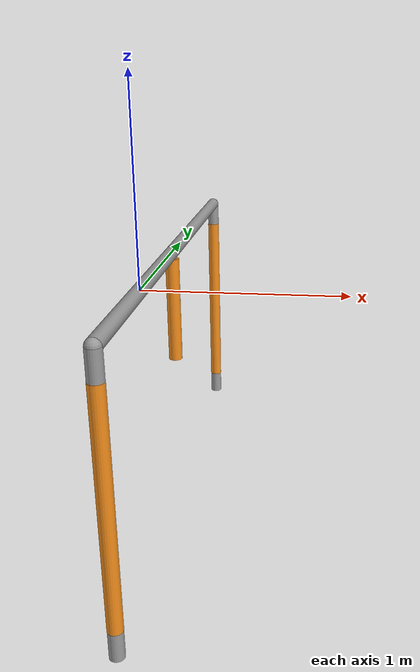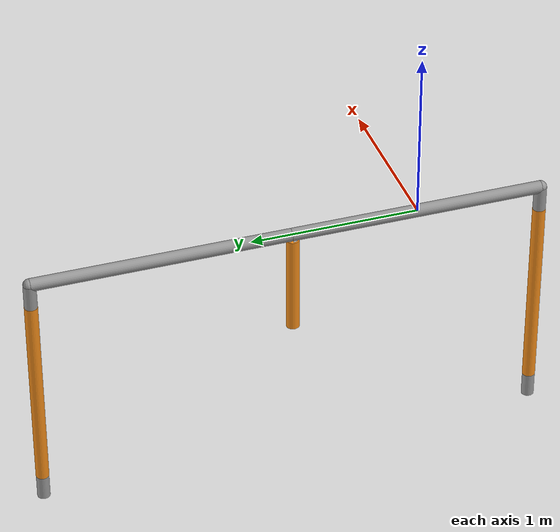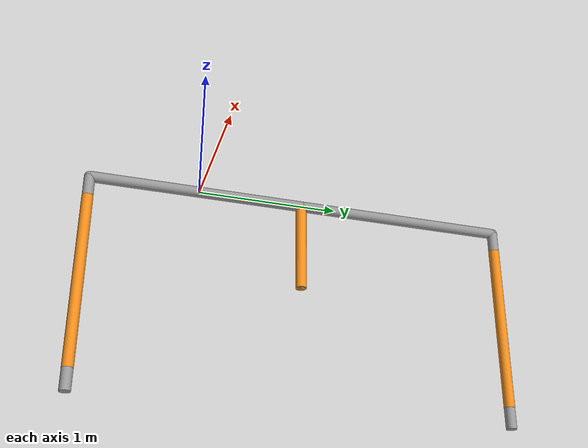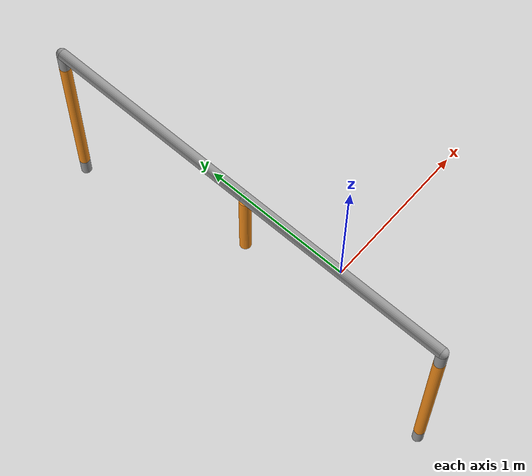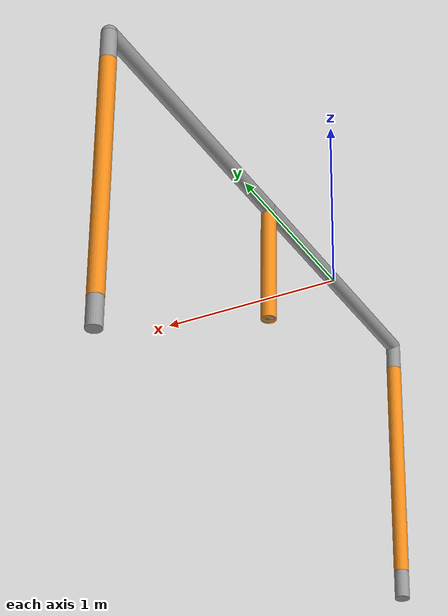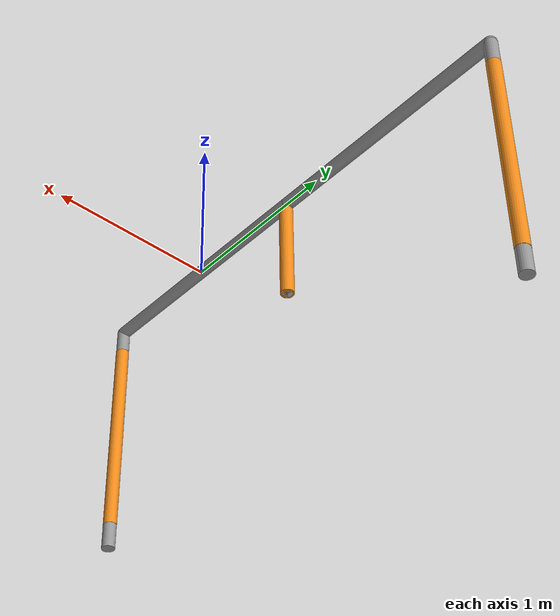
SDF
<?xml version='1.0'?>
<sdf version='1.6'>
  <model name='gate'>
    <link name='component_rt'>
      <inertial>
        <mass>10</mass>
        <inertia>
          <ixx>0.145833</ixx>
          <ixy>0</ixy>
          <ixz>0</ixz>
          <iyy>0.145833</iyy>
          <iyz>0</iyz>
          <izz>0.125</izz>
        </inertia>
        <pose>0 0 0 0 -0 0</pose>
      </inertial>
      <pose>0 1.52 -0.000146 1.5707 -0 0</pose>
      <self_collide>0</self_collide>
      <enable_wind>0</enable_wind>
      <kinematic>0</kinematic>
      <gravity>0</gravity>
      <visual name='visual'>
        <pose>0 0 0 0 -0 0</pose>
        <geometry>
          <cylinder>
            <radius>0.0381</radius>
            <length>1.52</length>
          </cylinder>
        </geometry>
        <material>
          <lighting>1</lighting>
          <script>
            <uri>file://media/materials/scripts/gazebo.material</uri>
            <name>Gazebo/Grey</name>
          </script>
          <shader type='pixel'/>
          <emissive>0 0 0 1</emissive>
        </material>
        <transparency>0</transparency>
        <cast_shadows>1</cast_shadows>
      </visual>
      <collision name='collision'>
        <laser_retro>0</laser_retro>
        <max_contacts>10</max_contacts>
        <pose>0 0 0 0 -0 0</pose>
        <geometry>
          <cylinder>
            <radius>0.0381</radius>
            <length>1.52</length>
          </cylinder>
        </geometry>
        <surface>
          <friction>
            <ode>
              <mu>1</mu>
              <mu2>1</mu2>
              <fdir1>0 0 0</fdir1>
              <slip1>0</slip1>
              <slip2>0</slip2>
            </ode>
            <torsional>
              <coefficient>1</coefficient>
              <patch_radius>0</patch_radius>
              <surface_radius>0</surface_radius>
              <use_patch_radius>1</use_patch_radius>
              <ode>
                <slip>0</slip>
              </ode>
            </torsional>
          </friction>
          <bounce>
            <restitution_coefficient>0</restitution_coefficient>
            <threshold>1e+06</threshold>
          </bounce>
          <contact>
            <collide_without_contact>0</collide_without_contact>
            <collide_without_contact_bitmask>1</collide_without_contact_bitmask>
            <collide_bitmask>1</collide_bitmask>
            <ode>
              <soft_cfm>0</soft_cfm>
              <soft_erp>0.2</soft_erp>
              <kp>1e+13</kp>
              <kd>1</kd>
              <max_vel>0.01</max_vel>
              <min_depth>0</min_depth>
            </ode>
            <bullet>
              <split_impulse>1</split_impulse>
              <split_impulse_penetration_threshold>-0.01</split_impulse_penetration_threshold>
              <soft_cfm>0</soft_cfm>
              <soft_erp>0.2</soft_erp>
              <kp>1e+13</kp>
              <kd>1</kd>
            </bullet>
          </contact>
        </surface>
      </collision>
    </link>
    <link name='component_lb'>
      <inertial>
        <mass>10</mass>
        <inertia>
          <ixx>0.145833</ixx>
          <ixy>0</ixy>
          <ixz>0</ixz>
          <iyy>0.145833</iyy>
          <iyz>0</iyz>
          <izz>0.125</izz>
        </inertia>
        <pose>0 0 0 0 -0 0</pose>
      </inertial>
      <pose>-0 -0.760073 -0.759927 0 -0 0</pose>
      <self_collide>0</self_collide>
      <enable_wind>0</enable_wind>
      <kinematic>0</kinematic>
      <gravity>0</gravity>
      <visual name='visual'>
        <pose>0 0 0 0 -0 0</pose>
        <geometry>
          <cylinder>
            <radius>0.0381</radius>
            <length>1.52</length>
          </cylinder>
        </geometry>
        <material>
          <lighting>1</lighting>
          <script>
            <uri>file://media/materials/scripts/gazebo.material</uri>
            <name>Gazebo/Grey</name>
          </script>
          <shader type='pixel'/>
          <emissive>0 0 0 1</emissive>
        </material>
        <transparency>0</transparency>
        <cast_shadows>1</cast_shadows>
      </visual>
      <collision name='collision'>
        <laser_retro>0</laser_retro>
        <max_contacts>10</max_contacts>
        <pose>0 0 0 0 -0 0</pose>
        <geometry>
          <cylinder>
            <radius>0.0381</radius>
            <length>1.52</length>
          </cylinder>
        </geometry>
        <surface>
          <friction>
            <ode>
              <mu>1</mu>
              <mu2>1</mu2>
              <fdir1>0 0 0</fdir1>
              <slip1>0</slip1>
              <slip2>0</slip2>
            </ode>
            <torsional>
              <coefficient>1</coefficient>
              <patch_radius>0</patch_radius>
              <surface_radius>0</surface_radius>
              <use_patch_radius>1</use_patch_radius>
              <ode>
                <slip>0</slip>
              </ode>
            </torsional>
          </friction>
          <bounce>
            <restitution_coefficient>0</restitution_coefficient>
            <threshold>1e+06</threshold>
          </bounce>
          <contact>
            <collide_without_contact>0</collide_without_contact>
            <collide_without_contact_bitmask>1</collide_without_contact_bitmask>
            <collide_bitmask>1</collide_bitmask>
            <ode>
              <soft_cfm>0</soft_cfm>
              <soft_erp>0.2</soft_erp>
              <kp>1e+13</kp>
              <kd>1</kd>
              <max_vel>0.01</max_vel>
              <min_depth>0</min_depth>
            </ode>
            <bullet>
              <split_impulse>1</split_impulse>
              <split_impulse_penetration_threshold>-0.01</split_impulse_penetration_threshold>
              <soft_cfm>0</soft_cfm>
              <soft_erp>0.2</soft_erp>
              <kp>1e+13</kp>
              <kd>1</kd>
            </bullet>
          </contact>
        </surface>
      </collision>
    </link>
    <link name='component_lt'>
      <inertial>
        <mass>10</mass>
        <inertia>
          <ixx>0.145833</ixx>
          <ixy>0</ixy>
          <ixz>0</ixz>
          <iyy>0.145833</iyy>
          <iyz>0</iyz>
          <izz>0.125</izz>
        </inertia>
        <pose>0 0 0 0 -0 0</pose>
      </inertial>
      <pose>0 0 0 1.5707 -0 0</pose>
      <self_collide>0</self_collide>
      <enable_wind>0</enable_wind>
      <kinematic>0</kinematic>
      <gravity>0</gravity>
      <visual name='visual'>
        <pose>0 0 0 0 -0 0</pose>
        <geometry>
          <cylinder>
            <radius>0.0381</radius>
            <length>1.52</length>
          </cylinder>
        </geometry>
        <material>
          <lighting>1</lighting>
          <script>
            <uri>file://media/materials/scripts/gazebo.material</uri>
            <name>Gazebo/Grey</name>
          </script>
          <shader type='pixel'/>
          <emissive>0 0 0 1</emissive>
        </material>
        <transparency>0</transparency>
        <cast_shadows>1</cast_shadows>
      </visual>
      <collision name='collision'>
        <laser_retro>0</laser_retro>
        <max_contacts>10</max_contacts>
        <pose>0 0 0 0 -0 0</pose>
        <geometry>
          <cylinder>
            <radius>0.0381</radius>
            <length>1.52</length>
          </cylinder>
        </geometry>
        <surface>
          <friction>
            <ode>
              <mu>1</mu>
              <mu2>1</mu2>
              <fdir1>0 0 0</fdir1>
              <slip1>0</slip1>
              <slip2>0</slip2>
            </ode>
            <torsional>
              <coefficient>1</coefficient>
              <patch_radius>0</patch_radius>
              <surface_radius>0</surface_radius>
              <use_patch_radius>1</use_patch_radius>
              <ode>
                <slip>0</slip>
              </ode>
            </torsional>
          </friction>
          <bounce>
            <restitution_coefficient>0</restitution_coefficient>
            <threshold>1e+06</threshold>
          </bounce>
          <contact>
            <collide_without_contact>0</collide_without_contact>
            <collide_without_contact_bitmask>1</collide_without_contact_bitmask>
            <collide_bitmask>1</collide_bitmask>
            <ode>
              <soft_cfm>0</soft_cfm>
              <soft_erp>0.2</soft_erp>
              <kp>1e+13</kp>
              <kd>1</kd>
              <max_vel>0.01</max_vel>
              <min_depth>0</min_depth>
            </ode>
            <bullet>
              <split_impulse>1</split_impulse>
              <split_impulse_penetration_threshold>-0.01</split_impulse_penetration_threshold>
              <soft_cfm>0</soft_cfm>
              <soft_erp>0.2</soft_erp>
              <kp>1e+13</kp>
              <kd>1</kd>
            </bullet>
          </contact>
        </surface>
      </collision>
    </link>
    <link name='component_rb'>
      <inertial>
        <mass>10</mass>
        <inertia>
          <ixx>0.145833</ixx>
          <ixy>0</ixy>
          <ixz>0</ixz>
          <iyy>0.145833</iyy>
          <iyz>0</iyz>
          <izz>0.125</izz>
        </inertia>
        <pose>0 0 0 0 -0 0</pose>
      </inertial>
      <pose>0 2.27993 -0.76022 0 -0 0</pose>
      <self_collide>0</self_collide>
      <enable_wind>0</enable_wind>
      <kinematic>0</kinematic>
      <gravity>0</gravity>
      <visual name='visual'>
        <pose>0 0 0 0 -0 0</pose>
        <geometry>
          <cylinder>
            <radius>0.0381</radius>
            <length>1.52</length>
          </cylinder>
        </geometry>
        <material>
          <lighting>1</lighting>
          <script>
            <uri>file://media/materials/scripts/gazebo.material</uri>
            <name>Gazebo/Grey</name>
          </script>
          <shader type='pixel'/>
          <emissive>0 0 0 1</emissive>
        </material>
        <transparency>0</transparency>
        <cast_shadows>1</cast_shadows>
      </visual>
      <collision name='collision'>
        <laser_retro>0</laser_retro>
        <max_contacts>10</max_contacts>
        <pose>0 0 0 0 -0 0</pose>
        <geometry>
          <cylinder>
            <radius>0.0381</radius>
            <length>1.52</length>
          </cylinder>
        </geometry>
        <surface>
          <friction>
            <ode>
              <mu>1</mu>
              <mu2>1</mu2>
              <fdir1>0 0 0</fdir1>
              <slip1>0</slip1>
              <slip2>0</slip2>
            </ode>
            <torsional>
              <coefficient>1</coefficient>
              <patch_radius>0</patch_radius>
              <surface_radius>0</surface_radius>
              <use_patch_radius>1</use_patch_radius>
              <ode>
                <slip>0</slip>
              </ode>
            </torsional>
          </friction>
          <bounce>
            <restitution_coefficient>0</restitution_coefficient>
            <threshold>1e+06</threshold>
          </bounce>
          <contact>
            <collide_without_contact>0</collide_without_contact>
            <collide_without_contact_bitmask>1</collide_without_contact_bitmask>
            <collide_bitmask>1</collide_bitmask>
            <ode>
              <soft_cfm>0</soft_cfm>
              <soft_erp>0.2</soft_erp>
              <kp>1e+13</kp>
              <kd>1</kd>
              <max_vel>0.01</max_vel>
              <min_depth>0</min_depth>
            </ode>
            <bullet>
              <split_impulse>1</split_impulse>
              <split_impulse_penetration_threshold>-0.01</split_impulse_penetration_threshold>
              <soft_cfm>0</soft_cfm>
              <soft_erp>0.2</soft_erp>
              <kp>1e+13</kp>
              <kd>1</kd>
            </bullet>
          </contact>
        </surface>
      </collision>
    </link>
    <link name='corner_l'>
      <inertial>
        <mass>1</mass>
        <inertia>
          <ixx>0.1</ixx>
          <ixy>0</ixy>
          <ixz>0</ixz>
          <iyy>0.1</iyy>
          <iyz>0</iyz>
          <izz>0.1</izz>
        </inertia>
        <pose>0 0 0 0 -0 0</pose>
      </inertial>
      <pose>-0 2.28 -0.000219 1.5707 -0 0</pose>
      <gravity>0</gravity>
      <self_collide>0</self_collide>
      <kinematic>0</kinematic>
      <enable_wind>0</enable_wind>
      <visual name='visual'>
        <pose>0 0 0 0 -0 0</pose>
        <geometry>
          <sphere>
            <radius>0.038</radius>
          </sphere>
        </geometry>
        <material>
          <lighting>1</lighting>
          <script>
            <uri>file://media/materials/scripts/gazebo.material</uri>
            <name>Gazebo/Grey</name>
          </script>
          <shader type='pixel'/>
          <emissive>0 0 0 1</emissive>
        </material>
        <transparency>0</transparency>
        <cast_shadows>1</cast_shadows>
      </visual>
      <collision name='collision'>
        <laser_retro>0</laser_retro>
        <max_contacts>10</max_contacts>
        <pose>0 0 0 0 -0 0</pose>
        <geometry>
          <sphere>
            <radius>0.0381</radius>
          </sphere>
        </geometry>
        <surface>
          <friction>
            <ode>
              <mu>1</mu>
              <mu2>1</mu2>
              <fdir1>0 0 0</fdir1>
              <slip1>0</slip1>
              <slip2>0</slip2>
            </ode>
            <torsional>
              <coefficient>1</coefficient>
              <patch_radius>0</patch_radius>
              <surface_radius>0</surface_radius>
              <use_patch_radius>1</use_patch_radius>
              <ode>
                <slip>0</slip>
              </ode>
            </torsional>
          </friction>
          <bounce>
            <restitution_coefficient>0</restitution_coefficient>
            <threshold>1e+06</threshold>
          </bounce>
          <contact>
            <collide_without_contact>0</collide_without_contact>
            <collide_without_contact_bitmask>1</collide_without_contact_bitmask>
            <collide_bitmask>1</collide_bitmask>
            <ode>
              <soft_cfm>0</soft_cfm>
              <soft_erp>0.2</soft_erp>
              <kp>1e+13</kp>
              <kd>1</kd>
              <max_vel>0.01</max_vel>
              <min_depth>0</min_depth>
            </ode>
            <bullet>
              <split_impulse>1</split_impulse>
              <split_impulse_penetration_threshold>-0.01</split_impulse_penetration_threshold>
              <soft_cfm>0</soft_cfm>
              <soft_erp>0.2</soft_erp>
              <kp>1e+13</kp>
              <kd>1</kd>
            </bullet>
          </contact>
        </surface>
      </collision>
    </link>
    <link name='corner_r'>
      <inertial>
        <mass>1</mass>
        <inertia>
          <ixx>0.1</ixx>
          <ixy>0</ixy>
          <ixz>0</ixz>
          <iyy>0.1</iyy>
          <iyz>0</iyz>
          <izz>0.1</izz>
        </inertia>
        <pose>0 0 0 0 -0 0</pose>
      </inertial>
      <pose>0 -0.76 -0 0 -0 0</pose>
      <gravity>0</gravity>
      <self_collide>0</self_collide>
      <kinematic>0</kinematic>
      <enable_wind>0</enable_wind>
      <visual name='visual'>
        <pose>0 0 0 0 -0 0</pose>
        <geometry>
          <sphere>
            <radius>0.038</radius>
          </sphere>
        </geometry>
        <material>
          <lighting>1</lighting>
          <script>
            <uri>file://media/materials/scripts/gazebo.material</uri>
            <name>Gazebo/Grey</name>
          </script>
          <shader type='pixel'/>
          <emissive>0 0 0 1</emissive>
        </material>
        <transparency>0</transparency>
        <cast_shadows>1</cast_shadows>
      </visual>
      <collision name='collision'>
        <laser_retro>0</laser_retro>
        <max_contacts>10</max_contacts>
        <pose>0 0 0 0 -0 0</pose>
        <geometry>
          <sphere>
            <radius>0.0381</radius>
          </sphere>
        </geometry>
        <surface>
          <friction>
            <ode>
              <mu>1</mu>
              <mu2>1</mu2>
              <fdir1>0 0 0</fdir1>
              <slip1>0</slip1>
              <slip2>0</slip2>
            </ode>
            <torsional>
              <coefficient>1</coefficient>
              <patch_radius>0</patch_radius>
              <surface_radius>0</surface_radius>
              <use_patch_radius>1</use_patch_radius>
              <ode>
                <slip>0</slip>
              </ode>
            </torsional>
          </friction>
          <bounce>
            <restitution_coefficient>0</restitution_coefficient>
            <threshold>1e+06</threshold>
          </bounce>
          <contact>
            <collide_without_contact>0</collide_without_contact>
            <collide_without_contact_bitmask>1</collide_without_contact_bitmask>
            <collide_bitmask>1</collide_bitmask>
            <ode>
              <soft_cfm>0</soft_cfm>
              <soft_erp>0.2</soft_erp>
              <kp>1e+13</kp>
              <kd>1</kd>
              <max_vel>0.01</max_vel>
              <min_depth>0</min_depth>
            </ode>
            <bullet>
              <split_impulse>1</split_impulse>
              <split_impulse_penetration_threshold>-0.01</split_impulse_penetration_threshold>
              <soft_cfm>0</soft_cfm>
              <soft_erp>0.2</soft_erp>
              <kp>1e+13</kp>
              <kd>1</kd>
            </bullet>
          </contact>
        </surface>
      </collision>
    </link>
    <link name='jacket_l'>
      <inertial>
        <mass>10</mass>
        <inertia>
          <ixx>0.145833</ixx>
          <ixy>0</ixy>
          <ixz>0</ixz>
          <iyy>0.145833</iyy>
          <iyz>0</iyz>
          <izz>0.125</izz>
        </inertia>
        <pose>0 0 0 0 -0 0</pose>
      </inertial>
      <pose>-0 -0.760073 -0.759927 0 -0 0</pose>
      <self_collide>0</self_collide>
      <enable_wind>0</enable_wind>
      <kinematic>0</kinematic>
      <gravity>0</gravity>
      <visual name='visual'>
        <pose>0 0 0 0 -0 0</pose>
        <geometry>
          <cylinder>
            <radius>0.039</radius>
            <length>1.219</length>
          </cylinder>
        </geometry>
        <material>
          <lighting>1</lighting>
          <script>
            <uri>file://media/materials/scripts/gazebo.material</uri>
            <name>Gazebo/Orange</name>
          </script>
          <shader type='pixel'/>
          <emissive>0 0 0 1</emissive>
        </material>
        <transparency>0</transparency>
        <cast_shadows>1</cast_shadows>
      </visual>
      <collision name='collision'>
        <laser_retro>0</laser_retro>
        <max_contacts>10</max_contacts>
        <pose>0 0 0 0 -0 0</pose>
        <geometry>
          <cylinder>
            <radius>0</radius>
            <length>0</length>
          </cylinder>
        </geometry>
        <surface>
          <friction>
            <ode>
              <mu>1</mu>
              <mu2>1</mu2>
              <fdir1>0 0 0</fdir1>
              <slip1>0</slip1>
              <slip2>0</slip2>
            </ode>
            <torsional>
              <coefficient>1</coefficient>
              <patch_radius>0</patch_radius>
              <surface_radius>0</surface_radius>
              <use_patch_radius>1</use_patch_radius>
              <ode>
                <slip>0</slip>
              </ode>
            </torsional>
          </friction>
          <bounce>
            <restitution_coefficient>0</restitution_coefficient>
            <threshold>1e+06</threshold>
          </bounce>
          <contact>
            <collide_without_contact>0</collide_without_contact>
            <collide_without_contact_bitmask>1</collide_without_contact_bitmask>
            <collide_bitmask>1</collide_bitmask>
            <ode>
              <soft_cfm>0</soft_cfm>
              <soft_erp>0.2</soft_erp>
              <kp>1e+13</kp>
              <kd>1</kd>
              <max_vel>0.01</max_vel>
              <min_depth>0</min_depth>
            </ode>
            <bullet>
              <split_impulse>1</split_impulse>
              <split_impulse_penetration_threshold>-0.01</split_impulse_penetration_threshold>
              <soft_cfm>0</soft_cfm>
              <soft_erp>0.2</soft_erp>
              <kp>1e+13</kp>
              <kd>1</kd>
            </bullet>
          </contact>
        </surface>
      </collision>
    </link>
    <link name='jacket_r'>
      <inertial>
        <mass>1</mass>
        <inertia>
          <ixx>0.145833</ixx>
          <ixy>0</ixy>
          <ixz>0</ixz>
          <iyy>0.145833</iyy>
          <iyz>0</iyz>
          <izz>0.125</izz>
        </inertia>
        <pose>0 0 0 0 -0 0</pose>
      </inertial>
      <pose>0 2.27993 -0.76022 0 -0 0</pose>
      <self_collide>0</self_collide>
      <enable_wind>0</enable_wind>
      <kinematic>0</kinematic>
      <gravity>0</gravity>
      <visual name='visual'>
        <pose>0 0 0 0 -0 0</pose>
        <geometry>
          <cylinder>
            <radius>0.039</radius>
            <length>1.219</length>
          </cylinder>
        </geometry>
        <material>
          <lighting>1</lighting>
          <script>
            <uri>file://media/materials/scripts/gazebo.material</uri>
            <name>Gazebo/Orange</name>
          </script>
          <shader type='pixel'/>
          <emissive>0 0 0 1</emissive>
        </material>
        <transparency>0</transparency>
        <cast_shadows>1</cast_shadows>
      </visual>
      <collision name='collision'>
        <laser_retro>0</laser_retro>
        <max_contacts>10</max_contacts>
        <pose>0 0 0 0 -0 0</pose>
        <geometry>
          <cylinder>
            <radius>0</radius>
            <length>0</length>
          </cylinder>
        </geometry>
        <surface>
          <friction>
            <ode>
              <mu>1</mu>
              <mu2>1</mu2>
              <fdir1>0 0 0</fdir1>
              <slip1>0</slip1>
              <slip2>0</slip2>
            </ode>
            <torsional>
              <coefficient>1</coefficient>
              <patch_radius>0</patch_radius>
              <surface_radius>0</surface_radius>
              <use_patch_radius>1</use_patch_radius>
              <ode>
                <slip>0</slip>
              </ode>
            </torsional>
          </friction>
          <bounce>
            <restitution_coefficient>0</restitution_coefficient>
            <threshold>1e+06</threshold>
          </bounce>
          <contact>
            <collide_without_contact>0</collide_without_contact>
            <collide_without_contact_bitmask>1</collide_without_contact_bitmask>
            <collide_bitmask>1</collide_bitmask>
            <ode>
              <soft_cfm>0</soft_cfm>
              <soft_erp>0.2</soft_erp>
              <kp>1e+13</kp>
              <kd>1</kd>
              <max_vel>0.01</max_vel>
              <min_depth>0</min_depth>
            </ode>
            <bullet>
              <split_impulse>1</split_impulse>
              <split_impulse_penetration_threshold>-0.01</split_impulse_penetration_threshold>
              <soft_cfm>0</soft_cfm>
              <soft_erp>0.2</soft_erp>
              <kp>1e+13</kp>
              <kd>1</kd>
            </bullet>
          </contact>
        </surface>
      </collision>
    </link>
    <link name='center_link'>
      <inertial>
        <mass>1</mass>
        <inertia>
          <ixx>0.145833</ixx>
          <ixy>0</ixy>
          <ixz>0</ixz>
          <iyy>0.145833</iyy>
          <iyz>0</iyz>
          <izz>0.125</izz>
        </inertia>
        <pose>0 0 0 0 -0 0</pose>
      </inertial>
      <pose>-0 0.75 -0.340029 3.1414 -0 0</pose>
      <gravity>0</gravity>
      <self_collide>0</self_collide>
      <kinematic>0</kinematic>
      <enable_wind>0</enable_wind>
      <visual name='visual'>
        <pose>0 0 0 0 -0 0</pose>
        <geometry>
          <cylinder>
            <radius>0.03</radius>
            <length>0.6096</length>
          </cylinder>
        </geometry>
        <material>
        <material>
          <lighting>1</lighting>
          <script>
            <uri>file://media/materials/scripts/gazebo.material</uri>
            <name>Gazebo/Orange</name>
          </script>
          <shader type='pixel'/>
          <emissive>0 0 0 1</emissive>
        </material>
        </material>
        <transparency>0</transparency>
        <cast_shadows>1</cast_shadows>
      </visual>
      <collision name='collision'>
        <laser_retro>0</laser_retro>
        <max_contacts>10</max_contacts>
        <pose>0 0 0 0 -0 0</pose>
        <geometry>
          <cylinder>
            <radius>0.03</radius>
            <length>0.6096</length>
          </cylinder>
        </geometry>
        <surface>
          <friction>
            <ode>
              <mu>1</mu>
              <mu2>1</mu2>
              <fdir1>0 0 0</fdir1>
              <slip1>0</slip1>
              <slip2>0</slip2>
            </ode>
            <torsional>
              <coefficient>1</coefficient>
              <patch_radius>0</patch_radius>
              <surface_radius>0</surface_radius>
              <use_patch_radius>1</use_patch_radius>
              <ode>
                <slip>0</slip>
              </ode>
            </torsional>
          </friction>
          <bounce>
            <restitution_coefficient>0</restitution_coefficient>
            <threshold>1e+06</threshold>
          </bounce>
          <contact>
            <collide_without_contact>0</collide_without_contact>
            <collide_without_contact_bitmask>1</collide_without_contact_bitmask>
            <collide_bitmask>1</collide_bitmask>
            <ode>
              <soft_cfm>0</soft_cfm>
              <soft_erp>0.2</soft_erp>
              <kp>1e+13</kp>
              <kd>1</kd>
              <max_vel>0.01</max_vel>
              <min_depth>0</min_depth>
            </ode>
            <bullet>
              <split_impulse>1</split_impulse>
              <split_impulse_penetration_threshold>-0.01</split_impulse_penetration_threshold>
              <soft_cfm>0</soft_cfm>
              <soft_erp>0.2</soft_erp>
              <kp>1e+13</kp>
              <kd>1</kd>
            </bullet>
          </contact>
        </surface>
      </collision>
    </link>
    <link name='jacket_c'>
      <inertial>
        <mass>10</mass>
        <inertia>
          <ixx>0.145833</ixx>
          <ixy>0</ixy>
          <ixz>0</ixz>
          <iyy>0.145833</iyy>
          <iyz>0</iyz>
          <izz>0.125</izz>
        </inertia>
        <pose>0 0 0 0 -0 0</pose>
      </inertial>
      <pose>-0 0.75 -0.340029 3.1414 -0 0</pose>
      <self_collide>0</self_collide>
      <enable_wind>0</enable_wind>
      <kinematic>0</kinematic>
      <gravity>0</gravity>
      <visual name='visual'>
        <pose>0 0 0 0 -0 0</pose>
        <geometry>
          <cylinder>
            <radius>0.039</radius>
            <length>0.6096</length>
          </cylinder>
        </geometry>
        <material>
          <lighting>1</lighting>
          <script>
            <uri>file://media/materials/scripts/gazebo.material</uri>
            <name>Gazebo/Orange</name>
          </script>
          <shader type='pixel'/>
          <emissive>0 0 0 1</emissive>
        </material>
        <transparency>0</transparency>
        <cast_shadows>1</cast_shadows>
      </visual>
      <collision name='collision'>
        <laser_retro>0</laser_retro>
        <max_contacts>10</max_contacts>
        <pose>0 0 0 0 -0 0</pose>
        <geometry>
          <cylinder>
            <radius>0</radius>
            <length>0</length>
          </cylinder>
        </geometry>
        <surface>
          <friction>
            <ode>
              <mu>1</mu>
              <mu2>1</mu2>
              <fdir1>0 0 0</fdir1>
              <slip1>0</slip1>
              <slip2>0</slip2>
            </ode>
            <torsional>
              <coefficient>1</coefficient>
              <patch_radius>0</patch_radius>
              <surface_radius>0</surface_radius>
              <use_patch_radius>1</use_patch_radius>
              <ode>
                <slip>0</slip>
              </ode>
            </torsional>
          </friction>
          <bounce>
            <restitution_coefficient>0</restitution_coefficient>
            <threshold>1e+06</threshold>
          </bounce>
          <contact>
            <collide_without_contact>0</collide_without_contact>
            <collide_without_contact_bitmask>1</collide_without_contact_bitmask>
            <collide_bitmask>1</collide_bitmask>
            <ode>
              <soft_cfm>0</soft_cfm>
              <soft_erp>0.2</soft_erp>
              <kp>1e+13</kp>
              <kd>1</kd>
              <max_vel>0.01</max_vel>
              <min_depth>0</min_depth>
            </ode>
            <bullet>
              <split_impulse>1</split_impulse>
              <split_impulse_penetration_threshold>-0.01</split_impulse_penetration_threshold>
              <soft_cfm>0</soft_cfm>
              <soft_erp>0.2</soft_erp>
              <kp>1e+13</kp>
              <kd>1</kd>
            </bullet>
          </contact>
        </surface>
      </collision>
    </link>
    <joint name='center_joint' type='fixed'>
      <parent>component_lt</parent>
      <child>center_link</child>
      <pose>0 0 0 0 -0 0</pose>
      <physics>
        <ode>
          <limit>
            <cfm>0</cfm>
            <erp>0.2</erp>
          </limit>
          <suspension>
            <cfm>0</cfm>
            <erp>0.2</erp>
          </suspension>
        </ode>
      </physics>
    </joint>
    <joint name='component_lt_lb' type='fixed'>
      <parent>component_lt</parent>
      <child>component_lb</child>
      <pose>0 0 0 0 -0 0</pose>
      <physics>
        <ode>
          <limit>
            <cfm>0</cfm>
            <erp>0.2</erp>
          </limit>
          <suspension>
            <cfm>0</cfm>
            <erp>0.2</erp>
          </suspension>
        </ode>
      </physics>
    </joint>
    <joint name='component_lt_rt' type='fixed'>
      <parent>component_lt</parent>
      <child>component_rt</child>
      <pose>0 0 0 0 -0 0</pose>
      <physics>
        <ode>
          <limit>
            <cfm>0</cfm>
            <erp>0.2</erp>
          </limit>
          <suspension>
            <cfm>0</cfm>
            <erp>0.2</erp>
          </suspension>
        </ode>
      </physics>
    </joint>
    <joint name='component_rt_rb' type='fixed'>
      <parent>component_rt</parent>
      <child>component_rb</child>
      <pose>0 0 0 0 -0 0</pose>
      <physics>
        <ode>
          <limit>
            <cfm>0</cfm>
            <erp>0.2</erp>
          </limit>
          <suspension>
            <cfm>0</cfm>
            <erp>0.2</erp>
          </suspension>
        </ode>
      </physics>
    </joint>
    <joint name='corner_joint_l' type='fixed'>
      <parent>component_lt</parent>
      <child>corner_l</child>
      <pose>0 0 0 0 -0 0</pose>
      <physics>
        <ode>
          <limit>
            <cfm>0</cfm>
            <erp>0.2</erp>
          </limit>
          <suspension>
            <cfm>0</cfm>
            <erp>0.2</erp>
          </suspension>
        </ode>
      </physics>
    </joint>
    <joint name='corner_joint_r' type='fixed'>
      <parent>component_rt</parent>
      <child>corner_r</child>
      <pose>0 0 0 0 -0 0</pose>
      <physics>
        <ode>
          <limit>
            <cfm>0</cfm>
            <erp>0.2</erp>
          </limit>
          <suspension>
            <cfm>0</cfm>
            <erp>0.2</erp>
          </suspension>
        </ode>
      </physics>
    </joint>
    <joint name='jacket_joint_l' type='fixed'>
      <parent>component_lb</parent>
      <child>jacket_l</child>
      <pose>0 0 0 0 -0 0</pose>
      <physics>
        <ode>
          <limit>
            <cfm>0</cfm>
            <erp>0.2</erp>
          </limit>
          <suspension>
            <cfm>0</cfm>
            <erp>0.2</erp>
          </suspension>
        </ode>
      </physics>
    </joint>
    <joint name='jacket_joint_r' type='fixed'>
      <parent>component_rb</parent>
      <child>jacket_r</child>
      <pose>0 0 0 0 -0 0</pose>
      <physics>
        <ode>
          <limit>
            <cfm>0</cfm>
            <erp>0.2</erp>
          </limit>
          <suspension>
            <cfm>0</cfm>
            <erp>0.2</erp>
          </suspension>
        </ode>
      </physics>
    </joint>
    <static>1</static>
    <allow_auto_disable>1</allow_auto_disable>
  </model>
</sdf>
